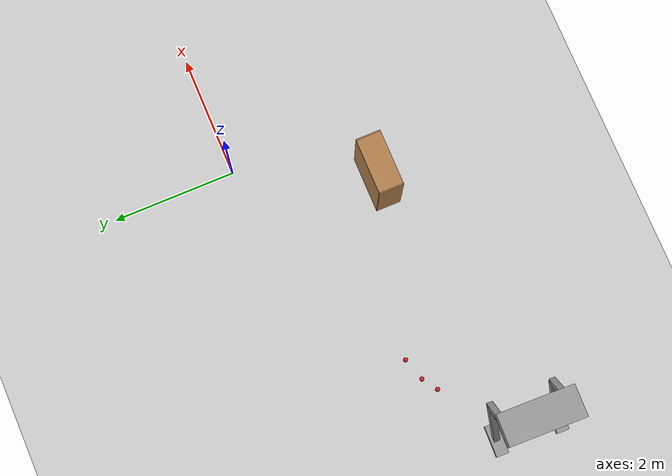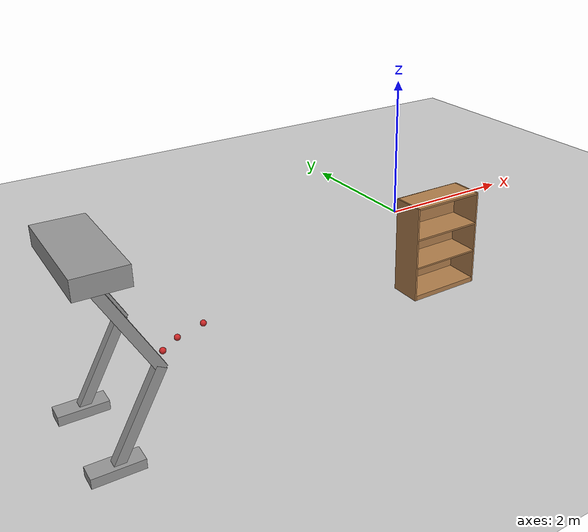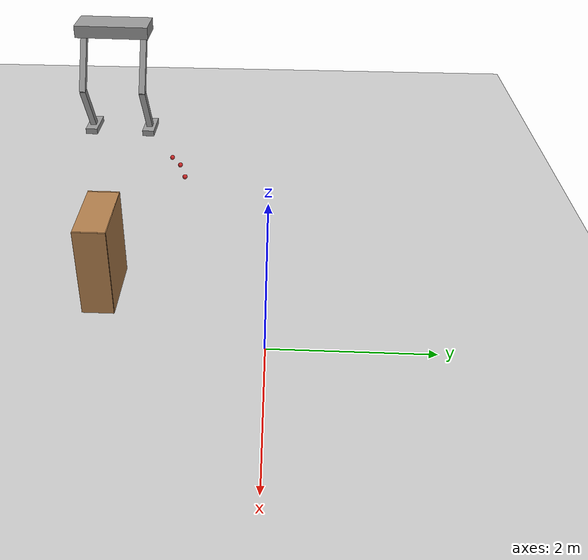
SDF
<sdf version="1.7">
 <world name="default">
  <model name="ground_plane">
   <static>1</static>
   <link name="link">
    <collision name="collision">
     <geometry><plane><normal>0 0 1</normal><size>100 100</size></plane></geometry>
     <surface>
      <contact><collide_bitmask>65535</collide_bitmask></contact>
      <friction><ode><mu>100</mu><mu2>50</mu2></ode></friction>
     </surface>
    </collision>
    <visual name="visual">
     <cast_shadows>0</cast_shadows>
     <geometry><plane><normal>0 0 1</normal><size>100 100</size></plane></geometry>
     <material>
      <script><uri>file://media/materials/scripts/gazebo.material</uri><name>Gazebo/Grey</name></script>
     </material>
    </visual>
   </link>
  </model>
  <model name="HumanoidRobot">
   <link name="link_0">
    <inertial>
     <mass>1</mass>
     <inertia>
      <ixx>0.166667</ixx>
      <ixy>0</ixy>
      <ixz>0</ixz>
      <iyy>0.166667</iyy>
      <iyz>0</iyz>
      <izz>0.166667</izz>
     </inertia>
    </inertial>
    <pose>-2.93875 -4.13679 -0.426059 0 -0 0</pose>
    <visual name="visual">
     <geometry><box><size>0.5 0.2 0.1</size></box></geometry>
     <material>
      <lighting>1</lighting>
      <script><uri>file://media/materials/scripts/gazebo.material</uri><name>Gazebo/Grey</name></script>
      <shader type="pixel"><normal_map>__default__</normal_map></shader>
      <ambient>0.3 0.3 0.3 1</ambient>
      <diffuse>0.7 0.7 0.7 1</diffuse>
      <specular>0.01 0.01 0.01 1</specular>
      <emissive>0 0 0 1</emissive>
     </material>
    </visual>
    <collision name="collision">
     <geometry><box><size>0.5 0.2 0.1</size></box></geometry>
     <surface>
      <friction>
       <ode><mu>1</mu><mu2>1</mu2><fdir1>0 0 0</fdir1><slip1>0</slip1><slip2>0</slip2></ode>
       <torsional>
        <coefficient>1</coefficient>
        <patch_radius>0</patch_radius>
        <surface_radius>0</surface_radius>
        <use_patch_radius>1</use_patch_radius>
        <ode><slip>0</slip></ode>
       </torsional>
      </friction>
      <bounce><restitution_coefficient>0</restitution_coefficient><threshold>1e+06</threshold></bounce>
      <contact>
       <collide_without_contact>0</collide_without_contact>
       <collide_without_contact_bitmask>1</collide_without_contact_bitmask>
       <collide_bitmask>1</collide_bitmask>
       <ode>
        <soft_cfm>0</soft_cfm>
        <soft_erp>0.2</soft_erp>
        <kp>1e+13</kp>
        <kd>1</kd>
        <max_vel>0.01</max_vel>
        <min_depth>0</min_depth>
       </ode>
       <bullet>
        <split_impulse>1</split_impulse>
        <split_impulse_penetration_threshold>-0.01</split_impulse_penetration_threshold>
        <soft_cfm>0</soft_cfm>
        <soft_erp>0.2</soft_erp>
        <kp>1e+13</kp>
        <kd>1</kd>
       </bullet>
      </contact>
     </surface>
    </collision>
   </link>
   <link name="link_0_clone">
    <inertial>
     <mass>1</mass>
     <inertia>
      <ixx>0.166667</ixx>
      <ixy>0</ixy>
      <ixz>0</ixz>
      <iyy>0.166667</iyy>
      <iyz>0</iyz>
      <izz>0.166667</izz>
     </inertia>
    </inertial>
    <pose>-2.93875 -3.13679 -0.426059 0 -0 0</pose>
    <visual name="visual">
     <geometry><box><size>0.5 0.2 0.1</size></box></geometry>
     <material>
      <lighting>1</lighting>
      <script><uri>file://media/materials/scripts/gazebo.material</uri><name>Gazebo/Grey</name></script>
      <shader type="pixel"><normal_map>__default__</normal_map></shader>
      <ambient>0.3 0.3 0.3 1</ambient>
      <diffuse>0.7 0.7 0.7 1</diffuse>
      <specular>0.01 0.01 0.01 1</specular>
      <emissive>0 0 0 1</emissive>
     </material>
    </visual>
    <collision name="collision">
     <geometry><box><size>0.5 0.2 0.1</size></box></geometry>
     <surface>
      <friction>
       <ode><mu>1</mu><mu2>1</mu2><fdir1>0 0 0</fdir1><slip1>0</slip1><slip2>0</slip2></ode>
       <torsional>
        <coefficient>1</coefficient>
        <patch_radius>0</patch_radius>
        <surface_radius>0</surface_radius>
        <use_patch_radius>1</use_patch_radius>
        <ode><slip>0</slip></ode>
       </torsional>
      </friction>
      <bounce><restitution_coefficient>0</restitution_coefficient><threshold>1e+06</threshold></bounce>
      <contact>
       <collide_without_contact>0</collide_without_contact>
       <collide_without_contact_bitmask>1</collide_without_contact_bitmask>
       <collide_bitmask>1</collide_bitmask>
       <ode>
        <soft_cfm>0</soft_cfm>
        <soft_erp>0.2</soft_erp>
        <kp>1e+13</kp>
        <kd>1</kd>
        <max_vel>0.01</max_vel>
        <min_depth>0</min_depth>
       </ode>
       <bullet>
        <split_impulse>1</split_impulse>
        <split_impulse_penetration_threshold>-0.01</split_impulse_penetration_threshold>
        <soft_cfm>0</soft_cfm>
        <soft_erp>0.2</soft_erp>
        <kp>1e+13</kp>
        <kd>1</kd>
       </bullet>
      </contact>
     </surface>
    </collision>
   </link>
   <link name="link_1">
    <inertial>
     <mass>1</mass>
     <inertia>
      <ixx>0.166667</ixx>
      <ixy>0</ixy>
      <ixz>0</ixz>
      <iyy>0.166667</iyy>
      <iyz>0</iyz>
      <izz>0.166667</izz>
     </inertia>
    </inertial>
    <pose>-2.68875 -4.13679 0.023941 0 0.5 0</pose>
    <visual name="visual">
     <geometry><box><size>0.1 0.1 1</size></box></geometry>
     <material>
      <lighting>1</lighting>
      <script><uri>file://media/materials/scripts/gazebo.material</uri><name>Gazebo/Grey</name></script>
      <shader type="pixel"><normal_map>__default__</normal_map></shader>
      <ambient>0.3 0.3 0.3 1</ambient>
      <diffuse>0.7 0.7 0.7 1</diffuse>
      <specular>0.01 0.01 0.01 1</specular>
      <emissive>0 0 0 1</emissive>
     </material>
    </visual>
    <collision name="collision">
     <geometry><box><size>0.1 0.1 1</size></box></geometry>
     <surface>
      <friction>
       <ode><mu>1</mu><mu2>1</mu2><fdir1>0 0 0</fdir1><slip1>0</slip1><slip2>0</slip2></ode>
       <torsional>
        <coefficient>1</coefficient>
        <patch_radius>0</patch_radius>
        <surface_radius>0</surface_radius>
        <use_patch_radius>1</use_patch_radius>
        <ode><slip>0</slip></ode>
       </torsional>
      </friction>
      <bounce><restitution_coefficient>0</restitution_coefficient><threshold>1e+06</threshold></bounce>
      <contact>
       <collide_without_contact>0</collide_without_contact>
       <collide_without_contact_bitmask>1</collide_without_contact_bitmask>
       <collide_bitmask>1</collide_bitmask>
       <ode>
        <soft_cfm>0</soft_cfm>
        <soft_erp>0.2</soft_erp>
        <kp>1e+13</kp>
        <kd>1</kd>
        <max_vel>0.01</max_vel>
        <min_depth>0</min_depth>
       </ode>
       <bullet>
        <split_impulse>1</split_impulse>
        <split_impulse_penetration_threshold>-0.01</split_impulse_penetration_threshold>
        <soft_cfm>0</soft_cfm>
        <soft_erp>0.2</soft_erp>
        <kp>1e+13</kp>
        <kd>1</kd>
       </bullet>
      </contact>
     </surface>
    </collision>
   </link>
   <link name="link_1_clone">
    <inertial>
     <mass>1</mass>
     <inertia>
      <ixx>0.166667</ixx>
      <ixy>0</ixy>
      <ixz>0</ixz>
      <iyy>0.166667</iyy>
      <iyz>0</iyz>
      <izz>0.166667</izz>
     </inertia>
    </inertial>
    <pose>-2.68875 -3.13679 0.023941 0 0.5 0</pose>
    <visual name="visual">
     <geometry><box><size>0.1 0.1 1</size></box></geometry>
     <material>
      <lighting>1</lighting>
      <script><uri>file://media/materials/scripts/gazebo.material</uri><name>Gazebo/Grey</name></script>
      <shader type="pixel"><normal_map>__default__</normal_map></shader>
      <ambient>0.3 0.3 0.3 1</ambient>
      <diffuse>0.7 0.7 0.7 1</diffuse>
      <specular>0.01 0.01 0.01 1</specular>
      <emissive>0 0 0 1</emissive>
     </material>
    </visual>
    <collision name="collision">
     <geometry><box><size>0.1 0.1 1</size></box></geometry>
     <surface>
      <friction>
       <ode><mu>1</mu><mu2>1</mu2><fdir1>0 0 0</fdir1><slip1>0</slip1><slip2>0</slip2></ode>
       <torsional>
        <coefficient>1</coefficient>
        <patch_radius>0</patch_radius>
        <surface_radius>0</surface_radius>
        <use_patch_radius>1</use_patch_radius>
        <ode><slip>0</slip></ode>
       </torsional>
      </friction>
      <bounce><restitution_coefficient>0</restitution_coefficient><threshold>1e+06</threshold></bounce>
      <contact>
       <collide_without_contact>0</collide_without_contact>
       <collide_without_contact_bitmask>1</collide_without_contact_bitmask>
       <collide_bitmask>1</collide_bitmask>
       <ode>
        <soft_cfm>0</soft_cfm>
        <soft_erp>0.2</soft_erp>
        <kp>1e+13</kp>
        <kd>1</kd>
        <max_vel>0.01</max_vel>
        <min_depth>0</min_depth>
       </ode>
       <bullet>
        <split_impulse>1</split_impulse>
        <split_impulse_penetration_threshold>-0.01</split_impulse_penetration_threshold>
        <soft_cfm>0</soft_cfm>
        <soft_erp>0.2</soft_erp>
        <kp>1e+13</kp>
        <kd>1</kd>
       </bullet>
      </contact>
     </surface>
    </collision>
   </link>
   <link name="link_2">
    <inertial>
     <mass>1</mass>
     <inertia>
      <ixx>0.166667</ixx>
      <ixy>0</ixy>
      <ixz>0</ixz>
      <iyy>0.166667</iyy>
      <iyz>0</iyz>
      <izz>0.166667</izz>
     </inertia>
    </inertial>
    <pose>-2.68022 -4.13679 0.873898 0 -0.5 0</pose>
    <visual name="visual">
     <geometry><box><size>0.1 0.1 1</size></box></geometry>
     <material>
      <lighting>1</lighting>
      <script><uri>file://media/materials/scripts/gazebo.material</uri><name>Gazebo/Grey</name></script>
      <shader type="pixel"><normal_map>__default__</normal_map></shader>
      <ambient>0.3 0.3 0.3 1</ambient>
      <diffuse>0.7 0.7 0.7 1</diffuse>
      <specular>0.01 0.01 0.01 1</specular>
      <emissive>0 0 0 1</emissive>
     </material>
    </visual>
    <collision name="collision">
     <geometry><box><size>0.1 0.1 1</size></box></geometry>
     <surface>
      <friction>
       <ode><mu>1</mu><mu2>1</mu2><fdir1>0 0 0</fdir1><slip1>0</slip1><slip2>0</slip2></ode>
       <torsional>
        <coefficient>1</coefficient>
        <patch_radius>0</patch_radius>
        <surface_radius>0</surface_radius>
        <use_patch_radius>1</use_patch_radius>
        <ode><slip>0</slip></ode>
       </torsional>
      </friction>
      <bounce><restitution_coefficient>0</restitution_coefficient><threshold>1e+06</threshold></bounce>
      <contact>
       <collide_without_contact>0</collide_without_contact>
       <collide_without_contact_bitmask>1</collide_without_contact_bitmask>
       <collide_bitmask>1</collide_bitmask>
       <ode>
        <soft_cfm>0</soft_cfm>
        <soft_erp>0.2</soft_erp>
        <kp>1e+13</kp>
        <kd>1</kd>
        <max_vel>0.01</max_vel>
        <min_depth>0</min_depth>
       </ode>
       <bullet>
        <split_impulse>1</split_impulse>
        <split_impulse_penetration_threshold>-0.01</split_impulse_penetration_threshold>
        <soft_cfm>0</soft_cfm>
        <soft_erp>0.2</soft_erp>
        <kp>1e+13</kp>
        <kd>1</kd>
       </bullet>
      </contact>
     </surface>
    </collision>
   </link>
   <link name="link_2_clone">
    <inertial>
     <mass>1</mass>
     <inertia>
      <ixx>0.166667</ixx>
      <ixy>0</ixy>
      <ixz>0</ixz>
      <iyy>0.166667</iyy>
      <iyz>0</iyz>
      <izz>0.166667</izz>
     </inertia>
    </inertial>
    <pose>-2.68022 -3.13679 0.873898 0 -0.5 0</pose>
    <visual name="visual">
     <geometry><box><size>0.1 0.1 1</size></box></geometry>
     <material>
      <lighting>1</lighting>
      <script><uri>file://media/materials/scripts/gazebo.material</uri><name>Gazebo/Grey</name></script>
      <shader type="pixel"><normal_map>__default__</normal_map></shader>
      <ambient>0.3 0.3 0.3 1</ambient>
      <diffuse>0.7 0.7 0.7 1</diffuse>
      <specular>0.01 0.01 0.01 1</specular>
      <emissive>0 0 0 1</emissive>
     </material>
    </visual>
    <collision name="collision">
     <geometry><box><size>0.1 0.1 1</size></box></geometry>
     <surface>
      <friction>
       <ode><mu>1</mu><mu2>1</mu2><fdir1>0 0 0</fdir1><slip1>0</slip1><slip2>0</slip2></ode>
       <torsional>
        <coefficient>1</coefficient>
        <patch_radius>0</patch_radius>
        <surface_radius>0</surface_radius>
        <use_patch_radius>1</use_patch_radius>
        <ode><slip>0</slip></ode>
       </torsional>
      </friction>
      <bounce><restitution_coefficient>0</restitution_coefficient><threshold>1e+06</threshold></bounce>
      <contact>
       <collide_without_contact>0</collide_without_contact>
       <collide_without_contact_bitmask>1</collide_without_contact_bitmask>
       <collide_bitmask>1</collide_bitmask>
       <ode>
        <soft_cfm>0</soft_cfm>
        <soft_erp>0.2</soft_erp>
        <kp>1e+13</kp>
        <kd>1</kd>
        <max_vel>0.01</max_vel>
        <min_depth>0</min_depth>
       </ode>
       <bullet>
        <split_impulse>1</split_impulse>
        <split_impulse_penetration_threshold>-0.01</split_impulse_penetration_threshold>
        <soft_cfm>0</soft_cfm>
        <soft_erp>0.2</soft_erp>
        <kp>1e+13</kp>
        <kd>1</kd>
       </bullet>
      </contact>
     </surface>
    </collision>
   </link>
   <link name="link_4">
    <inertial>
     <mass>1</mass>
     <inertia>
      <ixx>0.166667</ixx>
      <ixy>0</ixy>
      <ixz>0</ixz>
      <iyy>0.166667</iyy>
      <iyz>0</iyz>
      <izz>0.166667</izz>
     </inertia>
    </inertial>
    <pose>-2.87278 -3.62138 1.41019 0 -0 0</pose>
    <visual name="visual">
     <geometry><box><size>0.5 1.2 0.2</size></box></geometry>
     <material>
      <lighting>1</lighting>
      <script><uri>file://media/materials/scripts/gazebo.material</uri><name>Gazebo/Grey</name></script>
      <shader type="pixel"><normal_map>__default__</normal_map></shader>
      <ambient>0.3 0.3 0.3 1</ambient>
      <diffuse>0.7 0.7 0.7 1</diffuse>
      <specular>0.01 0.01 0.01 1</specular>
      <emissive>0 0 0 1</emissive>
     </material>
    </visual>
    <collision name="collision">
     <geometry><box><size>0.5 1.2 0.2</size></box></geometry>
     <surface>
      <friction>
       <ode><mu>1</mu><mu2>1</mu2><fdir1>0 0 0</fdir1><slip1>0</slip1><slip2>0</slip2></ode>
       <torsional>
        <coefficient>1</coefficient>
        <patch_radius>0</patch_radius>
        <surface_radius>0</surface_radius>
        <use_patch_radius>1</use_patch_radius>
        <ode><slip>0</slip></ode>
       </torsional>
      </friction>
      <bounce><restitution_coefficient>0</restitution_coefficient><threshold>1e+06</threshold></bounce>
      <contact>
       <collide_without_contact>0</collide_without_contact>
       <collide_without_contact_bitmask>1</collide_without_contact_bitmask>
       <collide_bitmask>1</collide_bitmask>
       <ode>
        <soft_cfm>0</soft_cfm>
        <soft_erp>0.2</soft_erp>
        <kp>1e+13</kp>
        <kd>1</kd>
        <max_vel>0.01</max_vel>
        <min_depth>0</min_depth>
       </ode>
       <bullet>
        <split_impulse>1</split_impulse>
        <split_impulse_penetration_threshold>-0.01</split_impulse_penetration_threshold>
        <soft_cfm>0</soft_cfm>
        <soft_erp>0.2</soft_erp>
        <kp>1e+13</kp>
        <kd>1</kd>
       </bullet>
      </contact>
     </surface>
    </collision>
   </link>
   <joint name="link_0_JOINT_1" type="revolute">
    <parent>link_0</parent>
    <child>link_1</child>
    <axis>
     <xyz>0 0 1</xyz>
     <limit>
      <lower>-1.79769e+308</lower>
      <upper>1.79769e+308</upper>
      <effort>-1</effort>
      <velocity>-1</velocity>
     </limit>
     <dynamics>
      <spring_reference>0</spring_reference>
      <spring_stiffness>0</spring_stiffness>
      <damping>0</damping>
     </dynamics>
    </axis>
    <physics>
     <ode><limit><cfm>0</cfm><erp>0.2</erp></limit><suspension><cfm>0</cfm><erp>0.2</erp></suspension></ode>
    </physics>
   </joint>
   <joint name="link_0_clone_JOINT_2" type="revolute">
    <parent>link_0_clone</parent>
    <child>link_1_clone</child>
    <axis>
     <xyz>0 0 1</xyz>
     <limit>
      <lower>-1.79769e+308</lower>
      <upper>1.79769e+308</upper>
      <effort>-1</effort>
      <velocity>-1</velocity>
     </limit>
     <dynamics>
      <spring_reference>0</spring_reference>
      <spring_stiffness>0</spring_stiffness>
      <damping>0</damping>
     </dynamics>
    </axis>
    <physics>
     <ode><limit><cfm>0</cfm><erp>0.2</erp></limit><suspension><cfm>0</cfm><erp>0.2</erp></suspension></ode>
    </physics>
   </joint>
   <joint name="link_1_JOINT_3" type="revolute">
    <parent>link_1</parent>
    <child>link_2</child>
    <axis>
     <xyz>0 0 1</xyz>
     <limit>
      <lower>-1.79769e+308</lower>
      <upper>1.79769e+308</upper>
      <effort>-1</effort>
      <velocity>-1</velocity>
     </limit>
     <dynamics>
      <spring_reference>0</spring_reference>
      <spring_stiffness>0</spring_stiffness>
      <damping>0</damping>
     </dynamics>
    </axis>
    <physics>
     <ode><limit><cfm>0</cfm><erp>0.2</erp></limit><suspension><cfm>0</cfm><erp>0.2</erp></suspension></ode>
    </physics>
   </joint>
   <joint name="link_1_clone_JOINT_4" type="revolute">
    <parent>link_1_clone</parent>
    <child>link_2_clone</child>
    <axis>
     <xyz>0 0 1</xyz>
     <limit>
      <lower>-1.79769e+308</lower>
      <upper>1.79769e+308</upper>
      <effort>-1</effort>
      <velocity>-1</velocity>
     </limit>
     <dynamics>
      <spring_reference>0</spring_reference>
      <spring_stiffness>0</spring_stiffness>
      <damping>0</damping>
     </dynamics>
    </axis>
    <physics>
     <ode><limit><cfm>0</cfm><erp>0.2</erp></limit><suspension><cfm>0</cfm><erp>0.2</erp></suspension></ode>
    </physics>
   </joint>
   <joint name="link_4_JOINT_6" type="revolute">
    <parent>link_4</parent>
    <child>link_2</child>
    <axis>
     <xyz>1 0 0</xyz>
     <limit>
      <lower>-1.79769e+308</lower>
      <upper>1.79769e+308</upper>
      <effort>-1</effort>
      <velocity>-1</velocity>
     </limit>
     <dynamics>
      <spring_reference>0</spring_reference>
      <spring_stiffness>0</spring_stiffness>
      <damping>0</damping>
     </dynamics>
    </axis>
    <physics>
     <ode><limit><cfm>0</cfm><erp>0.2</erp></limit><suspension><cfm>0</cfm><erp>0.2</erp></suspension></ode>
    </physics>
   </joint>
   <joint name="link_4_JOINT_7" type="revolute">
    <parent>link_4</parent>
    <child>link_2_clone</child>
    <axis>
     <xyz>1 0 0</xyz>
     <limit>
      <lower>-1.79769e+308</lower>
      <upper>1.79769e+308</upper>
      <effort>-1</effort>
      <velocity>-1</velocity>
     </limit>
     <dynamics>
      <spring_reference>0</spring_reference>
      <spring_stiffness>0</spring_stiffness>
      <damping>0</damping>
     </dynamics>
    </axis>
    <physics>
     <ode><limit><cfm>0</cfm><erp>0.2</erp></limit><suspension><cfm>0</cfm><erp>0.2</erp></suspension></ode>
    </physics>
   </joint>
   <static>0</static>
   <pose>-2.446 0.898907 0.475756 0 0.000112 -0.028533</pose>
  </model>
  <model name="cricket_ball">
   <link name="link">
    <pose>0 0 0.0375 0 -0 0</pose>
    <inertial>
     <mass>0.1467</mass>
     <inertia>
      <ixx>8.25187e-05</ixx>
      <ixy>0</ixy>
      <ixz>0</ixz>
      <iyy>8.25187e-05</iyy>
      <iyz>0</iyz>
      <izz>8.25187e-05</izz>
     </inertia>
    </inertial>
    <collision name="collision">
     <geometry><sphere><radius>0.0375</radius></sphere></geometry>
     <surface>
      <contact>
       <poissons_ratio>0.347</poissons_ratio>
       <elastic_modulus>8.8e+09</elastic_modulus>
       <ode><kp>100000</kp><kd>100</kd><max_vel>100</max_vel><min_depth>0.001</min_depth></ode>
      </contact>
      <friction>
       <torsional>
        <coefficient>1</coefficient>
        <use_patch_radius>0</use_patch_radius>
        <surface_radius>0.01</surface_radius>
       </torsional>
      </friction>
     </surface>
    </collision>
    <visual name="visual">
     <geometry><sphere><radius>0.0375</radius></sphere></geometry>
     <material>
      <script><uri>file://media/materials/scripts/gazebo.material</uri><name>Gazebo/Red</name></script>
     </material>
    </visual>
    <velocity_decay><linear>0</linear><angular>0.005</angular></velocity_decay>
   </link>
   <pose>-4.17437 -1.47208 0 0 -0 0</pose>
  </model>
  <model name="cricket_ball_0">
   <link name="link">
    <pose>0 0 0.0375 0 -0 0</pose>
    <inertial>
     <mass>0.1467</mass>
     <inertia>
      <ixx>8.25187e-05</ixx>
      <ixy>0</ixy>
      <ixz>0</ixz>
      <iyy>8.25187e-05</iyy>
      <iyz>0</iyz>
      <izz>8.25187e-05</izz>
     </inertia>
    </inertial>
    <collision name="collision">
     <geometry><sphere><radius>0.0375</radius></sphere></geometry>
     <surface>
      <contact>
       <poissons_ratio>0.347</poissons_ratio>
       <elastic_modulus>8.8e+09</elastic_modulus>
       <ode><kp>100000</kp><kd>100</kd><max_vel>100</max_vel><min_depth>0.001</min_depth></ode>
      </contact>
      <friction>
       <torsional>
        <coefficient>1</coefficient>
        <use_patch_radius>0</use_patch_radius>
        <surface_radius>0.01</surface_radius>
       </torsional>
      </friction>
     </surface>
    </collision>
    <visual name="visual">
     <geometry><sphere><radius>0.0375</radius></sphere></geometry>
     <material>
      <script><uri>file://media/materials/scripts/gazebo.material</uri><name>Gazebo/Red</name></script>
     </material>
    </visual>
    <velocity_decay><linear>0</linear><angular>0.005</angular></velocity_decay>
   </link>
   <pose>-4.41482 -1.63199 0 0 -0 0</pose>
  </model>
  <model name="cricket_ball_1">
   <link name="link">
    <pose>0 0 0.0375 0 -0 0</pose>
    <inertial>
     <mass>0.1467</mass>
     <inertia>
      <ixx>8.25187e-05</ixx>
      <ixy>0</ixy>
      <ixz>0</ixz>
      <iyy>8.25187e-05</iyy>
      <iyz>0</iyz>
      <izz>8.25187e-05</izz>
     </inertia>
    </inertial>
    <collision name="collision">
     <geometry><sphere><radius>0.0375</radius></sphere></geometry>
     <surface>
      <contact>
       <poissons_ratio>0.347</poissons_ratio>
       <elastic_modulus>8.8e+09</elastic_modulus>
       <ode><kp>100000</kp><kd>100</kd><max_vel>100</max_vel><min_depth>0.001</min_depth></ode>
      </contact>
      <friction>
       <torsional>
        <coefficient>1</coefficient>
        <use_patch_radius>0</use_patch_radius>
        <surface_radius>0.01</surface_radius>
       </torsional>
      </friction>
     </surface>
    </collision>
    <visual name="visual">
     <geometry><sphere><radius>0.0375</radius></sphere></geometry>
     <material>
      <script><uri>file://media/materials/scripts/gazebo.material</uri><name>Gazebo/Red</name></script>
     </material>
    </visual>
    <velocity_decay><linear>0</linear><angular>0.005</angular></velocity_decay>
   </link>
   <pose>-3.80415 -1.35768 0 0 -0 0</pose>
  </model>
  <model name="bookshelf">
   <static>1</static>
   <link name="link">
    <inertial><mass>1</mass></inertial>
    <collision name="back">
     <pose>0 0.005 0.6 0 -0 0</pose>
     <geometry><box><size>0.9 0.01 1.2</size></box></geometry>
    </collision>
    <visual name="visual1">
     <pose>0 0.005 0.6 0 -0 0</pose>
     <geometry><box><size>0.9 0.01 1.2</size></box></geometry>
     <material>
      <script><uri>file://media/materials/scripts/gazebo.material</uri><name>Gazebo/Wood</name></script>
     </material>
    </visual>
    <collision name="left_side">
     <pose>0.45 -0.195 0.6 0 -0 0</pose>
     <geometry><box><size>0.02 0.4 1.2</size></box></geometry>
    </collision>
    <visual name="visual2">
     <pose>0.45 -0.195 0.6 0 -0 0</pose>
     <geometry><box><size>0.02 0.4 1.2</size></box></geometry>
     <material>
      <script><uri>file://media/materials/scripts/gazebo.material</uri><name>Gazebo/Wood</name></script>
     </material>
    </visual>
    <collision name="right_side">
     <pose>-0.45 -0.195 0.6 0 -0 0</pose>
     <geometry><box><size>0.02 0.4 1.2</size></box></geometry>
    </collision>
    <visual name="visual3">
     <pose>-0.45 -0.195 0.6 0 -0 0</pose>
     <geometry><box><size>0.02 0.4 1.2</size></box></geometry>
     <material>
      <script><uri>file://media/materials/scripts/gazebo.material</uri><name>Gazebo/Wood</name></script>
     </material>
    </visual>
    <collision name="bottom">
     <pose>0 -0.195 0.03 0 -0 0</pose>
     <geometry><box><size>0.88 0.4 0.06</size></box></geometry>
    </collision>
    <visual name="visual4">
     <pose>0 -0.195 0.03 0 -0 0</pose>
     <geometry><box><size>0.88 0.4 0.06</size></box></geometry>
     <material>
      <script><uri>file://media/materials/scripts/gazebo.material</uri><name>Gazebo/Wood</name></script>
     </material>
    </visual>
    <collision name="top">
     <pose>0 -0.195 1.19 0 -0 0</pose>
     <geometry><box><size>0.88 0.4 0.02</size></box></geometry>
    </collision>
    <visual name="visual5">
     <pose>0 -0.195 1.19 0 -0 0</pose>
     <geometry><box><size>0.88 0.4 0.02</size></box></geometry>
     <material>
      <script><uri>file://media/materials/scripts/gazebo.material</uri><name>Gazebo/Wood</name></script>
     </material>
    </visual>
    <collision name="low_shelf">
     <pose>0 -0.195 0.43 0 -0 0</pose>
     <geometry><box><size>0.88 0.4 0.02</size></box></geometry>
    </collision>
    <visual name="visual6">
     <pose>0 -0.195 0.43 0 -0 0</pose>
     <geometry><box><size>0.88 0.4 0.02</size></box></geometry>
     <material>
      <script><uri>file://media/materials/scripts/gazebo.material</uri><name>Gazebo/Wood</name></script>
     </material>
    </visual>
    <collision name="high_shelf">
     <pose>0 -0.195 0.8 0 -0 0</pose>
     <geometry><box><size>0.88 0.4 0.02</size></box></geometry>
    </collision>
    <visual name="visual7">
     <pose>0 -0.195 0.8 0 -0 0</pose>
     <geometry><box><size>0.88 0.4 0.02</size></box></geometry>
     <material>
      <script><uri>file://media/materials/scripts/gazebo.material</uri><name>Gazebo/Wood</name></script>
     </material>
    </visual>
   </link>
   <pose>-0.990719 -1.8825 0 0 -0 0</pose>
  </model>
 </world>
</sdf>
